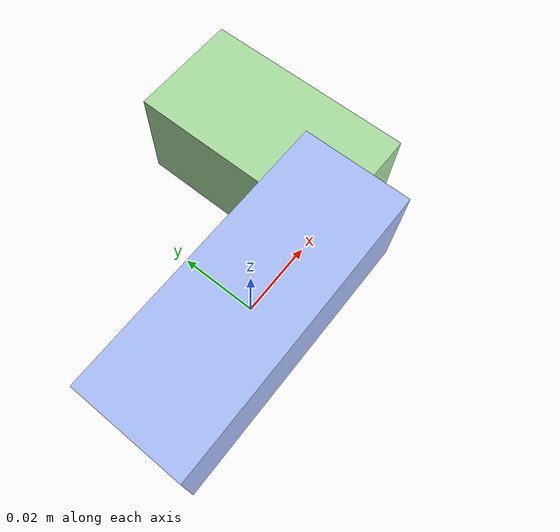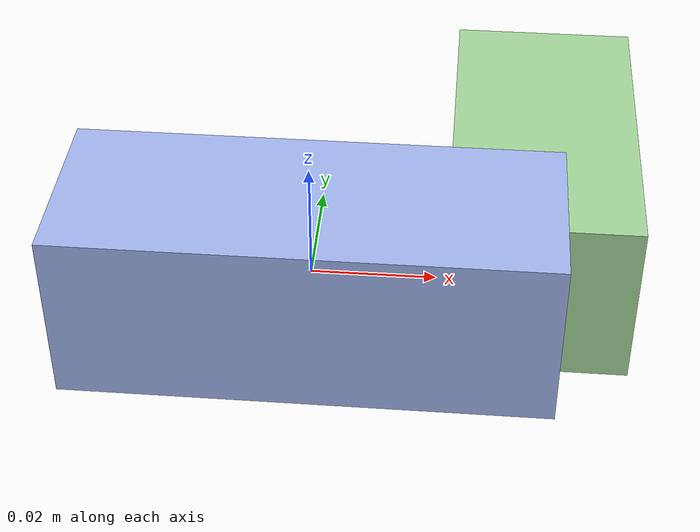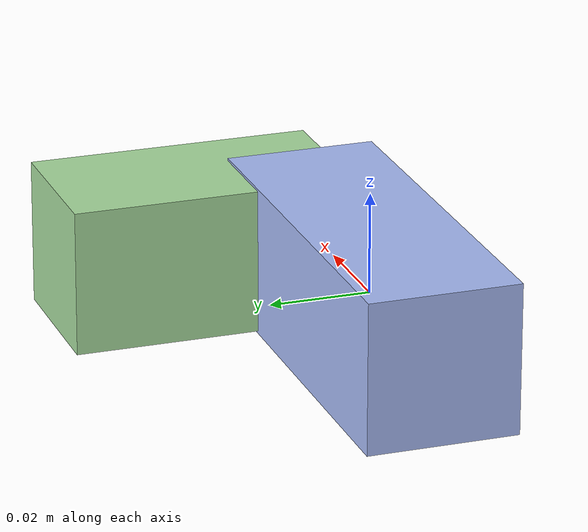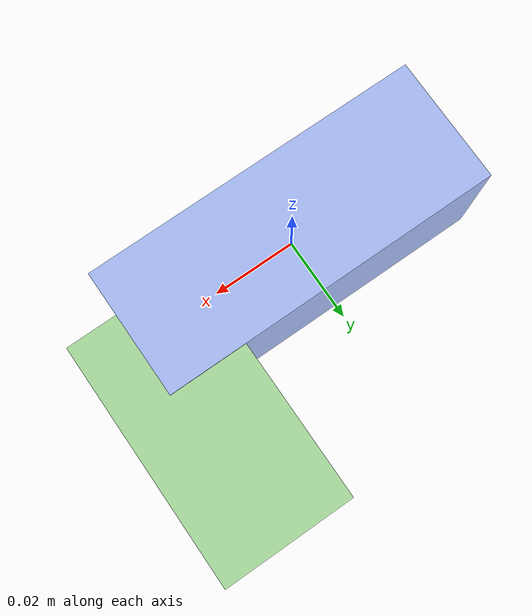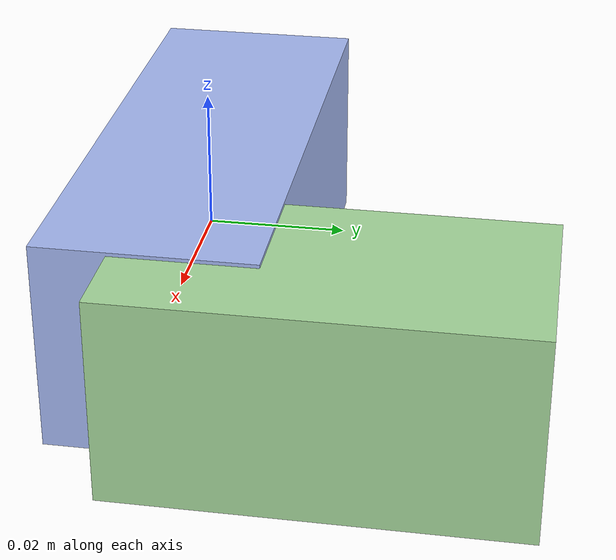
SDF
<sdf version="1.4"><world name="default"><model name="object0"><link name="link1"><pose>0 0 0 0 0 0</pose><inertial><pose>0 0 0 0 0 0</pose><mass>0.04297965026039785</mass><inertia><ixx>6.4469475390596775e-06</ixx><ixy>0</ixy><iyy>2.591270942523261e-05</iyy><ixz>0</ixz><iyz>0</iyz><izz>2.591270942523261e-05</izz></inertia></inertial><visual name="link1_visual"><pose>0 0  0 0 0 0</pose><geometry><box><size>0.07959194492666269 0.03 0.03</size></box></geometry><material><diffuse>0.6604817912635306 0.7380430273626519 0.9707899407517817 1</diffuse></material></visual><collision><pose>0 0  0 0 0 0</pose><geometry><box><size>0.07959194492666269 0.03 0.03</size></box></geometry></collision></link><link name="link2"><pose>0.03659489917322695 0.02349336660844737 0 0 0 0</pose><inertial><pose>0 0 0 0 0 0</pose><mass>0.030495951184766227</mass><inertia><ixx>1.024234686646594e-05</ixx><ixy>0</ixy><iyy>4.4244542510564995e-06</iyy><ixz>0</ixz><iyz>0</iyz><izz>1.0392285293124375e-05</izz></inertia></inertial><visual name="link2_visual"><pose>0 0  0 0 0 0</pose><geometry><box><size>0.03 0.056473983675493014 0.028999999999999998</size></box></geometry><material><diffuse>0.6638723686200905 0.8675530485700629 0.6237124185030607 1</diffuse></material></visual><collision><pose>0 0  0 0 0 0</pose><geometry><box><size>0.03 0.056473983675493014 0.028999999999999998</size></box></geometry></collision></link><joint name="link_joint_0" type="fixed"><parent>link1</parent><child>link2</child><pose>0 0 0 0 0 0</pose><axis><xyz>0 0 1</xyz></axis></joint></model></world></sdf>
